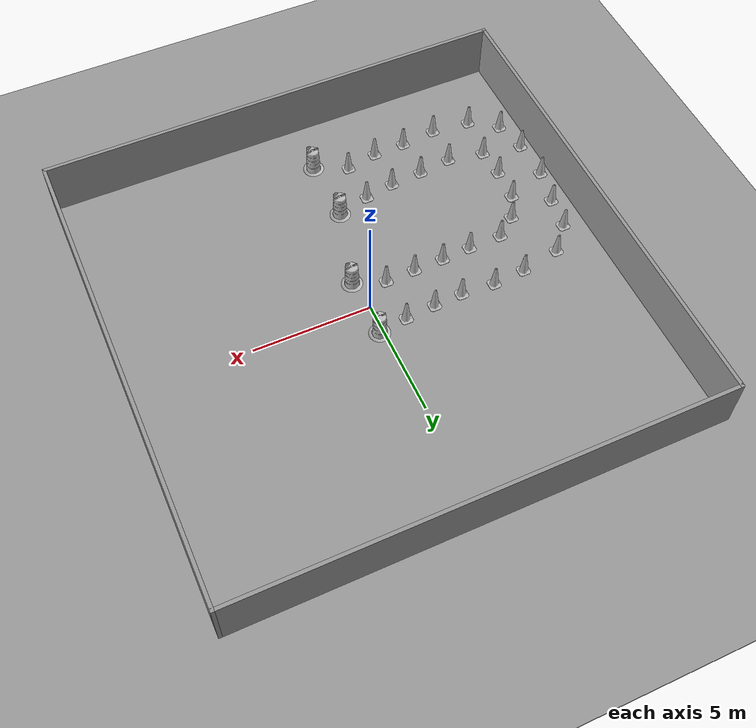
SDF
<sdf version="1.7">
 <world name="default">
  <light name="sun" type="directional">
   <pose>0 0 10 0 -0 0</pose>
   <diffuse>0.8 0.8 0.8 1</diffuse>
   <specular>0.2 0.2 0.2 1</specular>
   <attenuation>
    <range>1000</range>
    <constant>0.9</constant>
    <linear>0.01</linear>
    <quadratic>0.001</quadratic>
   </attenuation>
   <direction>-0.5 0.1 -0.9</direction>
   <spot><inner_angle>0</inner_angle><outer_angle>0</outer_angle><falloff>0</falloff></spot>
  </light>
  <model name="ground_plane">
   <static>1</static>
   <link name="link">
    <collision name="collision">
     <geometry><plane><normal>0 0 1</normal><size>100 100</size></plane></geometry>
     <surface><friction><ode><mu>100</mu><mu2>50</mu2></ode></friction></surface>
    </collision>
    <visual name="visual">
     <cast_shadows>0</cast_shadows>
     <geometry><plane><normal>0 0 1</normal><size>100 100</size></plane></geometry>
     <material>
      <script><uri>file://media/materials/scripts/gazebo.material</uri><name>Gazebo/Grey</name></script>
     </material>
    </visual>
   </link>
  </model>
  <gravity>0 0 -9.8</gravity>
  <magnetic_field>6e-06 2.3e-05 -4.2e-05</magnetic_field>
  <atmosphere type="adiabatic"/>
  <physics type="ode">
   <max_step_size>0.001</max_step_size>
   <real_time_factor>1</real_time_factor>
   <real_time_update_rate>1000</real_time_update_rate>
  </physics>
  <scene><ambient>0.4 0.4 0.4 1</ambient><background>0.7 0.7 0.7 1</background><shadows>1</shadows></scene>
  <spherical_coordinates>
   <surface_model>EARTH_WGS84</surface_model>
   <latitude_deg>0</latitude_deg>
   <longitude_deg>0</longitude_deg>
   <elevation>0</elevation>
   <heading_deg>0</heading_deg>
  </spherical_coordinates>
  <model name="Construction Barrel">
   <link name="link">
    <inertial>
     <pose>0 0 0.4 0 -0 0</pose>
     <mass>500</mass>
     <inertia><ixx>51.2096</ixx><iyy>51.2096</iyy><izz>25</izz><ixy>0</ixy><ixz>0</ixz><iyz>0</iyz></inertia>
    </inertial>
    <collision name="collision">
     <geometry><mesh><uri>model://construction_barrel/meshes/construction_barrel.dae</uri></mesh></geometry>
    </collision>
    <visual name="visual">
     <geometry><mesh><uri>model://construction_barrel/meshes/construction_barrel.dae</uri></mesh></geometry>
    </visual>
   </link>
   <pose>0.220306 -1.35278 -1e-06 1e-06 6e-06 -8.4e-05</pose>
  </model>
  <model name="Construction Barrel_clone">
   <link name="link">
    <inertial>
     <pose>0 0 0.4 0 -0 0</pose>
     <mass>500</mass>
     <inertia><ixx>51.2096</ixx><iyy>51.2096</iyy><izz>25</izz><ixy>0</ixy><ixz>0</ixz><iyz>0</iyz></inertia>
    </inertial>
    <collision name="collision">
     <geometry><mesh><uri>model://construction_barrel/meshes/construction_barrel.dae</uri></mesh></geometry>
    </collision>
    <visual name="visual">
     <geometry><mesh><uri>model://construction_barrel/meshes/construction_barrel.dae</uri></mesh></geometry>
    </visual>
   </link>
   <pose>0.182499 1.2515 -1e-06 1e-06 6e-06 -6.7e-05</pose>
  </model>
  <model name="Construction Cone">
   <link name="link">
    <collision name="collision">
     <geometry>
      <mesh><scale>10 10 10</scale><uri>model://construction_cone/meshes/construction_cone.dae</uri></mesh>
     </geometry>
    </collision>
    <visual name="visual">
     <geometry>
      <mesh><scale>10 10 10</scale><uri>model://construction_cone/meshes/construction_cone.dae</uri></mesh>
     </geometry>
    </visual>
    <inertial>
     <inertia><ixx>1</ixx><ixy>0</ixy><ixz>0</ixz><iyy>1</iyy><iyz>0</iyz><izz>1</izz></inertia>
     <mass>1</mass>
    </inertial>
   </link>
   <pose>-1.07396 -0.869895 -0 0 -0 0</pose>
  </model>
  <model name="Construction Cone_clone">
   <link name="link">
    <collision name="collision">
     <geometry>
      <mesh><scale>10 10 10</scale><uri>model://construction_cone/meshes/construction_cone.dae</uri></mesh>
     </geometry>
    </collision>
    <visual name="visual">
     <geometry>
      <mesh><scale>10 10 10</scale><uri>model://construction_cone/meshes/construction_cone.dae</uri></mesh>
     </geometry>
    </visual>
    <inertial>
     <inertia><ixx>1</ixx><ixy>0</ixy><ixz>0</ixz><iyy>1</iyy><iyz>0</iyz><izz>1</izz></inertia>
     <mass>1</mass>
    </inertial>
   </link>
   <pose>-2.3444 -0.901709 -0 1e-06 -0 0</pose>
  </model>
  <model name="Construction Cone_clone_0">
   <link name="link">
    <collision name="collision">
     <geometry>
      <mesh><scale>10 10 10</scale><uri>model://construction_cone/meshes/construction_cone.dae</uri></mesh>
     </geometry>
    </collision>
    <visual name="visual">
     <geometry>
      <mesh><scale>10 10 10</scale><uri>model://construction_cone/meshes/construction_cone.dae</uri></mesh>
     </geometry>
    </visual>
    <inertial>
     <inertia><ixx>1</ixx><ixy>0</ixy><ixz>0</ixz><iyy>1</iyy><iyz>0</iyz><izz>1</izz></inertia>
     <mass>1</mass>
    </inertial>
   </link>
   <pose>-3.62908 -0.933962 -0 1e-06 -0 0</pose>
  </model>
  <model name="Construction Cone_clone_1">
   <link name="link">
    <collision name="collision">
     <geometry>
      <mesh><scale>10 10 10</scale><uri>model://construction_cone/meshes/construction_cone.dae</uri></mesh>
     </geometry>
    </collision>
    <visual name="visual">
     <geometry>
      <mesh><scale>10 10 10</scale><uri>model://construction_cone/meshes/construction_cone.dae</uri></mesh>
     </geometry>
    </visual>
    <inertial>
     <inertia><ixx>1</ixx><ixy>0</ixy><ixz>0</ixz><iyy>1</iyy><iyz>0</iyz><izz>1</izz></inertia>
     <mass>1</mass>
    </inertial>
   </link>
   <pose>-4.89543 -0.99493 -0 1e-06 -0 0</pose>
  </model>
  <model name="Construction Cone_clone_2">
   <link name="link">
    <collision name="collision">
     <geometry>
      <mesh><scale>10 10 10</scale><uri>model://construction_cone/meshes/construction_cone.dae</uri></mesh>
     </geometry>
    </collision>
    <visual name="visual">
     <geometry>
      <mesh><scale>10 10 10</scale><uri>model://construction_cone/meshes/construction_cone.dae</uri></mesh>
     </geometry>
    </visual>
    <inertial>
     <inertia><ixx>1</ixx><ixy>0</ixy><ixz>0</ixz><iyy>1</iyy><iyz>0</iyz><izz>1</izz></inertia>
     <mass>1</mass>
    </inertial>
   </link>
   <pose>-4.98642 1.0201 -0 -0 -0 -0</pose>
  </model>
  <model name="Construction Cone_clone_3">
   <link name="link">
    <collision name="collision">
     <geometry>
      <mesh><scale>10 10 10</scale><uri>model://construction_cone/meshes/construction_cone.dae</uri></mesh>
     </geometry>
    </collision>
    <visual name="visual">
     <geometry>
      <mesh><scale>10 10 10</scale><uri>model://construction_cone/meshes/construction_cone.dae</uri></mesh>
     </geometry>
    </visual>
    <inertial>
     <inertia><ixx>1</ixx><ixy>0</ixy><ixz>0</ixz><iyy>1</iyy><iyz>0</iyz><izz>1</izz></inertia>
     <mass>1</mass>
    </inertial>
   </link>
   <pose>-3.56561 0.928096 -0 1e-06 -0 0</pose>
  </model>
  <model name="Construction Cone_clone_4">
   <link name="link">
    <collision name="collision">
     <geometry>
      <mesh><scale>10 10 10</scale><uri>model://construction_cone/meshes/construction_cone.dae</uri></mesh>
     </geometry>
    </collision>
    <visual name="visual">
     <geometry>
      <mesh><scale>10 10 10</scale><uri>model://construction_cone/meshes/construction_cone.dae</uri></mesh>
     </geometry>
    </visual>
    <inertial>
     <inertia><ixx>1</ixx><ixy>0</ixy><ixz>0</ixz><iyy>1</iyy><iyz>0</iyz><izz>1</izz></inertia>
     <mass>1</mass>
    </inertial>
   </link>
   <pose>-2.33702 0.982551 -0 1e-06 -0 0</pose>
  </model>
  <model name="Construction Cone_clone_5">
   <link name="link">
    <collision name="collision">
     <geometry>
      <mesh><scale>10 10 10</scale><uri>model://construction_cone/meshes/construction_cone.dae</uri></mesh>
     </geometry>
    </collision>
    <visual name="visual">
     <geometry>
      <mesh><scale>10 10 10</scale><uri>model://construction_cone/meshes/construction_cone.dae</uri></mesh>
     </geometry>
    </visual>
    <inertial>
     <inertia><ixx>1</ixx><ixy>0</ixy><ixz>0</ixz><iyy>1</iyy><iyz>0</iyz><izz>1</izz></inertia>
     <mass>1</mass>
    </inertial>
   </link>
   <pose>-1.04523 1.0849 -0 1e-06 -0 0</pose>
  </model>
  <model name="Construction Cone_clone_6">
   <link name="link">
    <collision name="collision">
     <geometry>
      <mesh><scale>10 10 10</scale><uri>model://construction_cone/meshes/construction_cone.dae</uri></mesh>
     </geometry>
    </collision>
    <visual name="visual">
     <geometry>
      <mesh><scale>10 10 10</scale><uri>model://construction_cone/meshes/construction_cone.dae</uri></mesh>
     </geometry>
    </visual>
    <inertial>
     <inertia><ixx>1</ixx><ixy>0</ixy><ixz>0</ixz><iyy>1</iyy><iyz>0</iyz><izz>1</izz></inertia>
     <mass>1</mass>
    </inertial>
   </link>
   <pose>-6.33335 -1.02632 -0 0 -0 0</pose>
  </model>
  <model name="Construction Cone_clone_7">
   <link name="link">
    <collision name="collision">
     <geometry>
      <mesh><scale>10 10 10</scale><uri>model://construction_cone/meshes/construction_cone.dae</uri></mesh>
     </geometry>
    </collision>
    <visual name="visual">
     <geometry>
      <mesh><scale>10 10 10</scale><uri>model://construction_cone/meshes/construction_cone.dae</uri></mesh>
     </geometry>
    </visual>
    <inertial>
     <inertia><ixx>1</ixx><ixy>0</ixy><ixz>0</ixz><iyy>1</iyy><iyz>0</iyz><izz>1</izz></inertia>
     <mass>1</mass>
    </inertial>
   </link>
   <pose>-6.38194 0.911486 -1e-05 -1e-06 0 0</pose>
  </model>
  <model name="Construction Cone_clone_8">
   <link name="link">
    <collision name="collision">
     <geometry>
      <mesh><scale>10 10 10</scale><uri>model://construction_cone/meshes/construction_cone.dae</uri></mesh>
     </geometry>
    </collision>
    <visual name="visual">
     <geometry>
      <mesh><scale>10 10 10</scale><uri>model://construction_cone/meshes/construction_cone.dae</uri></mesh>
     </geometry>
    </visual>
    <inertial>
     <inertia><ixx>1</ixx><ixy>0</ixy><ixz>0</ixz><iyy>1</iyy><iyz>0</iyz><izz>1</izz></inertia>
     <mass>1</mass>
    </inertial>
   </link>
   <pose>-8.08145 0.593459 -0 1e-06 -0 0</pose>
  </model>
  <model name="Construction Cone_clone_9">
   <link name="link">
    <collision name="collision">
     <geometry>
      <mesh><scale>10 10 10</scale><uri>model://construction_cone/meshes/construction_cone.dae</uri></mesh>
     </geometry>
    </collision>
    <visual name="visual">
     <geometry>
      <mesh><scale>10 10 10</scale><uri>model://construction_cone/meshes/construction_cone.dae</uri></mesh>
     </geometry>
    </visual>
    <inertial>
     <inertia><ixx>1</ixx><ixy>0</ixy><ixz>0</ixz><iyy>1</iyy><iyz>0</iyz><izz>1</izz></inertia>
     <mass>1</mass>
    </inertial>
   </link>
   <pose>-8.98942 -0.451616 -0 1e-06 -0 0</pose>
  </model>
  <model name="Construction Cone_clone_10">
   <link name="link">
    <collision name="collision">
     <geometry>
      <mesh><scale>10 10 10</scale><uri>model://construction_cone/meshes/construction_cone.dae</uri></mesh>
     </geometry>
    </collision>
    <visual name="visual">
     <geometry>
      <mesh><scale>10 10 10</scale><uri>model://construction_cone/meshes/construction_cone.dae</uri></mesh>
     </geometry>
    </visual>
    <inertial>
     <inertia><ixx>1</ixx><ixy>0</ixy><ixz>0</ixz><iyy>1</iyy><iyz>0</iyz><izz>1</izz></inertia>
     <mass>1</mass>
    </inertial>
   </link>
   <pose>-7.2206 -1.70492 -0 1e-06 -0 0</pose>
  </model>
  <model name="Construction Cone_clone_11">
   <link name="link">
    <collision name="collision">
     <geometry>
      <mesh><scale>10 10 10</scale><uri>model://construction_cone/meshes/construction_cone.dae</uri></mesh>
     </geometry>
    </collision>
    <visual name="visual">
     <geometry>
      <mesh><scale>10 10 10</scale><uri>model://construction_cone/meshes/construction_cone.dae</uri></mesh>
     </geometry>
    </visual>
    <inertial>
     <inertia><ixx>1</ixx><ixy>0</ixy><ixz>0</ixz><iyy>1</iyy><iyz>0</iyz><izz>1</izz></inertia>
     <mass>1</mass>
    </inertial>
   </link>
   <pose>-9.1953 -1.8167 -0 1e-06 -0 0</pose>
  </model>
  <model name="Construction Cone_clone_12">
   <link name="link">
    <collision name="collision">
     <geometry>
      <mesh><scale>10 10 10</scale><uri>model://construction_cone/meshes/construction_cone.dae</uri></mesh>
     </geometry>
    </collision>
    <visual name="visual">
     <geometry>
      <mesh><scale>10 10 10</scale><uri>model://construction_cone/meshes/construction_cone.dae</uri></mesh>
     </geometry>
    </visual>
    <inertial>
     <inertia><ixx>1</ixx><ixy>0</ixy><ixz>0</ixz><iyy>1</iyy><iyz>0</iyz><izz>1</izz></inertia>
     <mass>1</mass>
    </inertial>
   </link>
   <pose>-7.76953 -2.7009 -1e-05 -1e-06 0 0</pose>
  </model>
  <model name="Construction Cone_clone_13">
   <link name="link">
    <collision name="collision">
     <geometry>
      <mesh><scale>10 10 10</scale><uri>model://construction_cone/meshes/construction_cone.dae</uri></mesh>
     </geometry>
    </collision>
    <visual name="visual">
     <geometry>
      <mesh><scale>10 10 10</scale><uri>model://construction_cone/meshes/construction_cone.dae</uri></mesh>
     </geometry>
    </visual>
    <inertial>
     <inertia><ixx>1</ixx><ixy>0</ixy><ixz>0</ixz><iyy>1</iyy><iyz>0</iyz><izz>1</izz></inertia>
     <mass>1</mass>
    </inertial>
   </link>
   <pose>-9.50497 -3.33526 -0 1e-06 -0 0</pose>
  </model>
  <model name="Construction Cone_clone_14">
   <link name="link">
    <collision name="collision">
     <geometry>
      <mesh><scale>10 10 10</scale><uri>model://construction_cone/meshes/construction_cone.dae</uri></mesh>
     </geometry>
    </collision>
    <visual name="visual">
     <geometry>
      <mesh><scale>10 10 10</scale><uri>model://construction_cone/meshes/construction_cone.dae</uri></mesh>
     </geometry>
    </visual>
    <inertial>
     <inertia><ixx>1</ixx><ixy>0</ixy><ixz>0</ixz><iyy>1</iyy><iyz>0</iyz><izz>1</izz></inertia>
     <mass>1</mass>
    </inertial>
   </link>
   <pose>-7.85572 -4.10002 -0 1e-06 -0 0</pose>
  </model>
  <model name="Construction Cone_clone_15">
   <link name="link">
    <collision name="collision">
     <geometry>
      <mesh><scale>10 10 10</scale><uri>model://construction_cone/meshes/construction_cone.dae</uri></mesh>
     </geometry>
    </collision>
    <visual name="visual">
     <geometry>
      <mesh><scale>10 10 10</scale><uri>model://construction_cone/meshes/construction_cone.dae</uri></mesh>
     </geometry>
    </visual>
    <inertial>
     <inertia><ixx>1</ixx><ixy>0</ixy><ixz>0</ixz><iyy>1</iyy><iyz>0</iyz><izz>1</izz></inertia>
     <mass>1</mass>
    </inertial>
   </link>
   <pose>-9.45329 -5.05056 -0 -0 -0 -0</pose>
  </model>
  <model name="Construction Cone_clone_16">
   <link name="link">
    <collision name="collision">
     <geometry>
      <mesh><scale>10 10 10</scale><uri>model://construction_cone/meshes/construction_cone.dae</uri></mesh>
     </geometry>
    </collision>
    <visual name="visual">
     <geometry>
      <mesh><scale>10 10 10</scale><uri>model://construction_cone/meshes/construction_cone.dae</uri></mesh>
     </geometry>
    </visual>
    <inertial>
     <inertia><ixx>1</ixx><ixy>0</ixy><ixz>0</ixz><iyy>1</iyy><iyz>0</iyz><izz>1</izz></inertia>
     <mass>1</mass>
    </inertial>
   </link>
   <pose>-7.75824 -5.36092 -0 1e-06 -0 0</pose>
  </model>
  <model name="Construction Cone_clone_17">
   <link name="link">
    <collision name="collision">
     <geometry>
      <mesh><scale>10 10 10</scale><uri>model://construction_cone/meshes/construction_cone.dae</uri></mesh>
     </geometry>
    </collision>
    <visual name="visual">
     <geometry>
      <mesh><scale>10 10 10</scale><uri>model://construction_cone/meshes/construction_cone.dae</uri></mesh>
     </geometry>
    </visual>
    <inertial>
     <inertia><ixx>1</ixx><ixy>0</ixy><ixz>0</ixz><iyy>1</iyy><iyz>0</iyz><izz>1</izz></inertia>
     <mass>1</mass>
    </inertial>
   </link>
   <pose>-6.21968 -5.63345 -0 1e-06 -0 0</pose>
  </model>
  <model name="Construction Cone_clone_18">
   <link name="link">
    <collision name="collision">
     <geometry>
      <mesh><scale>10 10 10</scale><uri>model://construction_cone/meshes/construction_cone.dae</uri></mesh>
     </geometry>
    </collision>
    <visual name="visual">
     <geometry>
      <mesh><scale>10 10 10</scale><uri>model://construction_cone/meshes/construction_cone.dae</uri></mesh>
     </geometry>
    </visual>
    <inertial>
     <inertia><ixx>1</ixx><ixy>0</ixy><ixz>0</ixz><iyy>1</iyy><iyz>0</iyz><izz>1</izz></inertia>
     <mass>1</mass>
    </inertial>
   </link>
   <pose>-4.80625 -5.48132 -0 0 -0 0</pose>
  </model>
  <model name="Construction Cone_clone_19">
   <link name="link">
    <collision name="collision">
     <geometry>
      <mesh><scale>10 10 10</scale><uri>model://construction_cone/meshes/construction_cone.dae</uri></mesh>
     </geometry>
    </collision>
    <visual name="visual">
     <geometry>
      <mesh><scale>10 10 10</scale><uri>model://construction_cone/meshes/construction_cone.dae</uri></mesh>
     </geometry>
    </visual>
    <inertial>
     <inertia><ixx>1</ixx><ixy>0</ixy><ixz>0</ixz><iyy>1</iyy><iyz>0</iyz><izz>1</izz></inertia>
     <mass>1</mass>
    </inertial>
   </link>
   <pose>-3.41042 -5.382 -0 1e-06 -0 0</pose>
  </model>
  <model name="Construction Cone_clone_20">
   <link name="link">
    <collision name="collision">
     <geometry>
      <mesh><scale>10 10 10</scale><uri>model://construction_cone/meshes/construction_cone.dae</uri></mesh>
     </geometry>
    </collision>
    <visual name="visual">
     <geometry>
      <mesh><scale>10 10 10</scale><uri>model://construction_cone/meshes/construction_cone.dae</uri></mesh>
     </geometry>
    </visual>
    <inertial>
     <inertia><ixx>1</ixx><ixy>0</ixy><ixz>0</ixz><iyy>1</iyy><iyz>0</iyz><izz>1</izz></inertia>
     <mass>1</mass>
    </inertial>
   </link>
   <pose>-2.13589 -5.16338 -0 -0 -0 -0</pose>
  </model>
  <model name="Construction Cone_clone_21">
   <link name="link">
    <collision name="collision">
     <geometry>
      <mesh><scale>10 10 10</scale><uri>model://construction_cone/meshes/construction_cone.dae</uri></mesh>
     </geometry>
    </collision>
    <visual name="visual">
     <geometry>
      <mesh><scale>10 10 10</scale><uri>model://construction_cone/meshes/construction_cone.dae</uri></mesh>
     </geometry>
    </visual>
    <inertial>
     <inertia><ixx>1</ixx><ixy>0</ixy><ixz>0</ixz><iyy>1</iyy><iyz>0</iyz><izz>1</izz></inertia>
     <mass>1</mass>
    </inertial>
   </link>
   <pose>-9.1387 -6.43358 -0 1e-06 -0 0</pose>
  </model>
  <model name="Construction Cone_clone_22">
   <link name="link">
    <collision name="collision">
     <geometry>
      <mesh><scale>10 10 10</scale><uri>model://construction_cone/meshes/construction_cone.dae</uri></mesh>
     </geometry>
    </collision>
    <visual name="visual">
     <geometry>
      <mesh><scale>10 10 10</scale><uri>model://construction_cone/meshes/construction_cone.dae</uri></mesh>
     </geometry>
    </visual>
    <inertial>
     <inertia><ixx>1</ixx><ixy>0</ixy><ixz>0</ixz><iyy>1</iyy><iyz>0</iyz><izz>1</izz></inertia>
     <mass>1</mass>
    </inertial>
   </link>
   <pose>-7.9823 -7.236 -0 0 -0 0</pose>
  </model>
  <model name="Construction Cone_clone_23">
   <link name="link">
    <collision name="collision">
     <geometry>
      <mesh><scale>10 10 10</scale><uri>model://construction_cone/meshes/construction_cone.dae</uri></mesh>
     </geometry>
    </collision>
    <visual name="visual">
     <geometry>
      <mesh><scale>10 10 10</scale><uri>model://construction_cone/meshes/construction_cone.dae</uri></mesh>
     </geometry>
    </visual>
    <inertial>
     <inertia><ixx>1</ixx><ixy>0</ixy><ixz>0</ixz><iyy>1</iyy><iyz>0</iyz><izz>1</izz></inertia>
     <mass>1</mass>
    </inertial>
   </link>
   <pose>-6.32555 -7.40834 -0 -0 -0 -0</pose>
  </model>
  <model name="Construction Cone_clone_24">
   <link name="link">
    <collision name="collision">
     <geometry>
      <mesh><scale>10 10 10</scale><uri>model://construction_cone/meshes/construction_cone.dae</uri></mesh>
     </geometry>
    </collision>
    <visual name="visual">
     <geometry>
      <mesh><scale>10 10 10</scale><uri>model://construction_cone/meshes/construction_cone.dae</uri></mesh>
     </geometry>
    </visual>
    <inertial>
     <inertia><ixx>1</ixx><ixy>0</ixy><ixz>0</ixz><iyy>1</iyy><iyz>0</iyz><izz>1</izz></inertia>
     <mass>1</mass>
    </inertial>
   </link>
   <pose>-4.81176 -7.2588 -0 -0 -0 -0</pose>
  </model>
  <model name="Construction Cone_clone_25">
   <link name="link">
    <collision name="collision">
     <geometry>
      <mesh><scale>10 10 10</scale><uri>model://construction_cone/meshes/construction_cone.dae</uri></mesh>
     </geometry>
    </collision>
    <visual name="visual">
     <geometry>
      <mesh><scale>10 10 10</scale><uri>model://construction_cone/meshes/construction_cone.dae</uri></mesh>
     </geometry>
    </visual>
    <inertial>
     <inertia><ixx>1</ixx><ixy>0</ixy><ixz>0</ixz><iyy>1</iyy><iyz>0</iyz><izz>1</izz></inertia>
     <mass>1</mass>
    </inertial>
   </link>
   <pose>-3.42983 -7.23107 -0 1e-06 -0 0</pose>
  </model>
  <model name="Construction Cone_clone_26">
   <link name="link">
    <collision name="collision">
     <geometry>
      <mesh><scale>10 10 10</scale><uri>model://construction_cone/meshes/construction_cone.dae</uri></mesh>
     </geometry>
    </collision>
    <visual name="visual">
     <geometry>
      <mesh><scale>10 10 10</scale><uri>model://construction_cone/meshes/construction_cone.dae</uri></mesh>
     </geometry>
    </visual>
    <inertial>
     <inertia><ixx>1</ixx><ixy>0</ixy><ixz>0</ixz><iyy>1</iyy><iyz>0</iyz><izz>1</izz></inertia>
     <mass>1</mass>
    </inertial>
   </link>
   <pose>-2.0814 -6.96826 -0 1e-06 -0 0</pose>
  </model>
  <model name="Construction Barrel_0">
   <link name="link">
    <inertial>
     <pose>0 0 0.4 0 -0 0</pose>
     <mass>500</mass>
     <inertia><ixx>51.2096</ixx><iyy>51.2096</iyy><izz>25</izz><ixy>0</ixy><ixz>0</ixz><iyz>0</iyz></inertia>
    </inertial>
    <collision name="collision">
     <geometry><mesh><uri>model://construction_barrel/meshes/construction_barrel.dae</uri></mesh></geometry>
    </collision>
    <visual name="visual">
     <geometry><mesh><uri>model://construction_barrel/meshes/construction_barrel.dae</uri></mesh></geometry>
    </visual>
   </link>
   <pose>-0.706116 -7.59933 -1e-06 1e-06 -1e-06 -5e-05</pose>
  </model>
  <model name="Construction Barrel_0_clone">
   <link name="link">
    <inertial>
     <pose>0 0 0.4 0 -0 0</pose>
     <mass>500</mass>
     <inertia><ixx>51.2096</ixx><iyy>51.2096</iyy><izz>25</izz><ixy>0</ixy><ixz>0</ixz><iyz>0</iyz></inertia>
    </inertial>
    <collision name="collision">
     <geometry><mesh><uri>model://construction_barrel/meshes/construction_barrel.dae</uri></mesh></geometry>
    </collision>
    <visual name="visual">
     <geometry><mesh><uri>model://construction_barrel/meshes/construction_barrel.dae</uri></mesh></geometry>
    </visual>
   </link>
   <pose>-0.756068 -4.8147 -0 0 0 -4.1e-05</pose>
  </model>
  <model name="ground_plane_0">
   <static>1</static>
   <link name="link">
    <collision name="collision">
     <geometry><plane><normal>0 0 1</normal><size>100 100</size></plane></geometry>
     <surface><friction><ode><mu>100</mu><mu2>50</mu2></ode></friction></surface>
    </collision>
    <visual name="visual">
     <cast_shadows>0</cast_shadows>
     <geometry><plane><normal>0 0 1</normal><size>100 100</size></plane></geometry>
     <material>
      <script><uri>file://media/materials/scripts/gazebo.material</uri><name>Gazebo/Grey</name></script>
     </material>
    </visual>
   </link>
   <pose>-0.002262 0.001798 0 0 -0 0</pose>
  </model>
  <model name="WALLS">
   <link name="Wall_3">
    <collision name="Wall_3_Collision">
     <geometry><box><size>20.15 0.15 2.5</size></box></geometry>
     <pose>0 0 1.25 0 -0 0</pose>
    </collision>
    <visual name="Wall_3_Visual">
     <pose>0 0 1.25 0 -0 0</pose>
     <geometry><box><size>20.15 0.15 2.5</size></box></geometry>
     <material>
      <script><uri>file://media/materials/scripts/gazebo.material</uri><name>Gazebo/Grey</name></script>
      <ambient>1 1 1 1</ambient>
     </material>
     <meta><layer>0</layer></meta>
    </visual>
    <pose>-10 0 0 0 -0 -1.5708</pose>
   </link>
   <link name="Wall_5">
    <collision name="Wall_5_Collision">
     <geometry><box><size>20.15 0.15 2.5</size></box></geometry>
     <pose>0 0 1.25 0 -0 0</pose>
    </collision>
    <visual name="Wall_5_Visual">
     <pose>0 0 1.25 0 -0 0</pose>
     <geometry><box><size>20.15 0.15 2.5</size></box></geometry>
     <material>
      <script><uri>file://media/materials/scripts/gazebo.material</uri><name>Gazebo/Grey</name></script>
      <ambient>1 1 1 1</ambient>
     </material>
     <meta><layer>0</layer></meta>
    </visual>
    <pose>0 -10 0 0 -0 0</pose>
   </link>
   <link name="Wall_6">
    <collision name="Wall_6_Collision">
     <geometry><box><size>20.15 0.15 2.5</size></box></geometry>
     <pose>0 0 1.25 0 -0 0</pose>
    </collision>
    <visual name="Wall_6_Visual">
     <pose>0 0 1.25 0 -0 0</pose>
     <geometry><box><size>20.15 0.15 2.5</size></box></geometry>
     <material>
      <script><uri>file://media/materials/scripts/gazebo.material</uri><name>Gazebo/Grey</name></script>
      <ambient>1 1 1 1</ambient>
     </material>
     <meta><layer>0</layer></meta>
    </visual>
    <pose>10 0 0 0 -0 1.5708</pose>
   </link>
   <link name="Wall_7">
    <collision name="Wall_7_Collision">
     <geometry><box><size>20.15 0.15 2.5</size></box></geometry>
     <pose>0 0 1.25 0 -0 0</pose>
    </collision>
    <visual name="Wall_7_Visual">
     <pose>0 0 1.25 0 -0 0</pose>
     <geometry><box><size>20.15 0.15 2.5</size></box></geometry>
     <material>
      <script><uri>file://media/materials/scripts/gazebo.material</uri><name>Gazebo/Grey</name></script>
      <ambient>1 1 1 1</ambient>
     </material>
     <meta><layer>0</layer></meta>
    </visual>
    <pose>0 10 0 0 -0 3.14159</pose>
   </link>
   <static>1</static>
  </model>
 </world>
</sdf>
